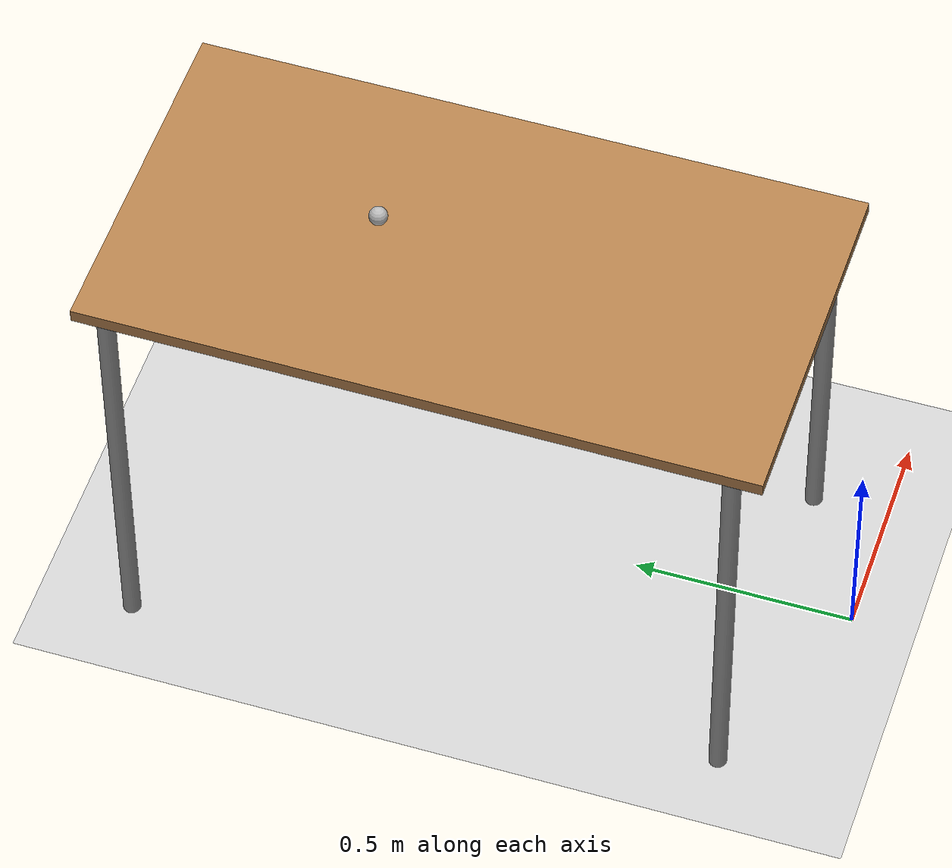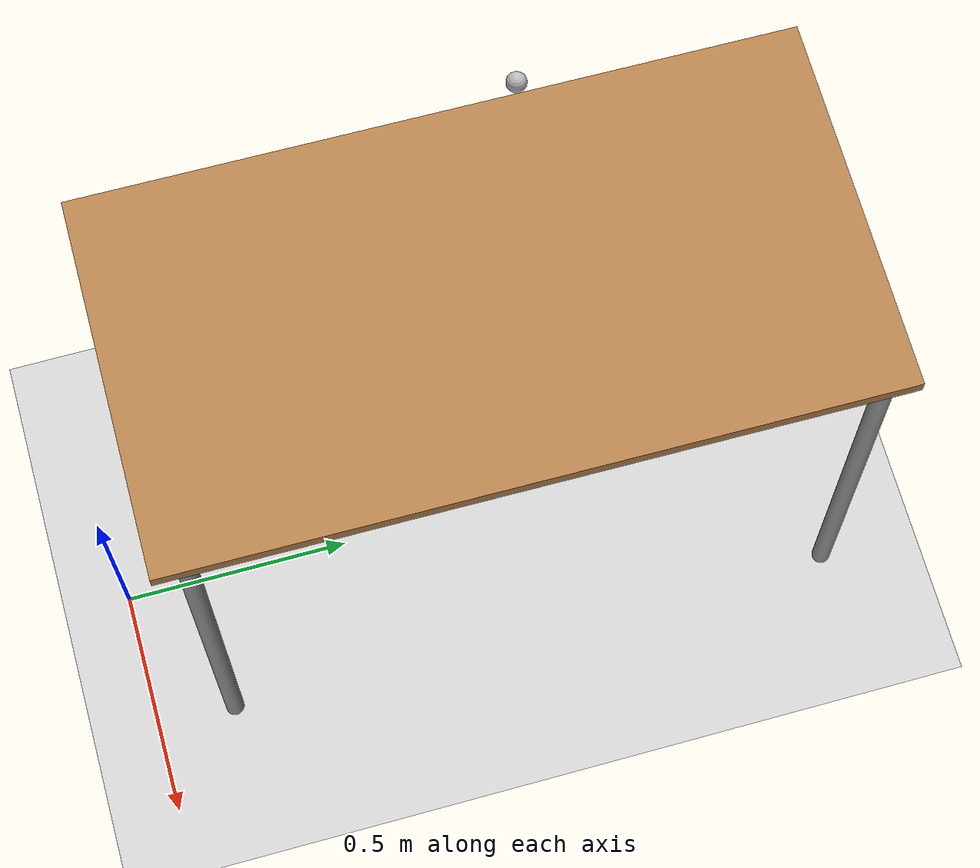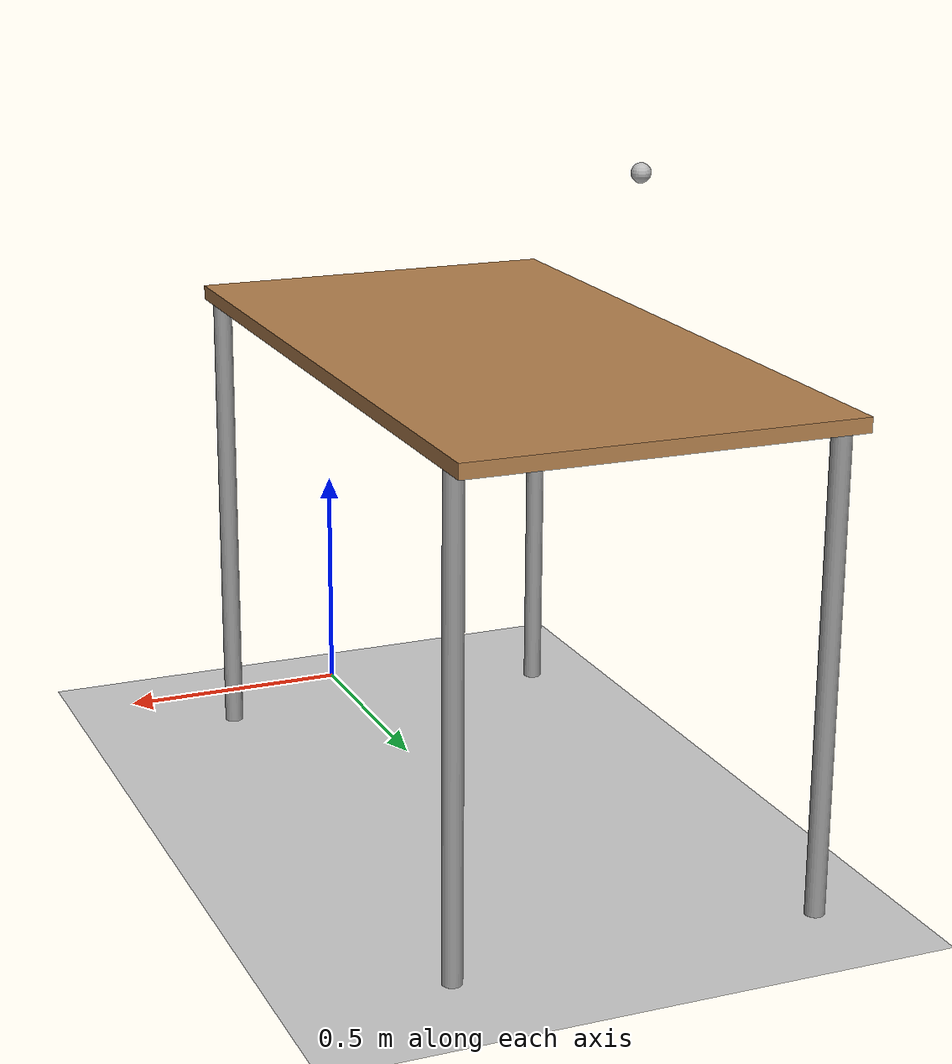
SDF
<sdf version="1.6">
 <world name="scooping">
  <include><uri>model://sun</uri></include>
  <include><uri>model://ground_plane</uri></include>
  <include><uri>model://table</uri><pose>-0.071633 0.854817 0 0 0 -1.57694</pose><static>true</static></include>
  <include>
   <uri>model://gripper</uri>
   <pose>-0.309675 0.976666 1.362517 0 0 0</pose>
   <plugin name="grip" filename="libGripPlugin.so"><link>ladle::link</link></plugin>
   <plugin name="force_controller" filename="libforce_controller_plugin.so">
    <linkName>link</linkName>
    <topicName>set_ee_twist</topicName>
    <P>0.5</P>
    <I>0.0</I>
    <D>0.0</D>
   </plugin>
  </include>
  <plugin name="box_factory" filename="libBoxFactoryPlugin.so">
   <pose>-0.125013 0.976666 1.015001 0 0 0</pose>
   <width>0.15</width>
   <depth>0.15</depth>
   <height>0.06</height>
   <friction>0.8</friction>
   <friction2>0.8</friction2>
   <mass>0.01</mass>
   <thickness>0.005</thickness>
   <static>true</static>
  </plugin>
  <plugin name="grains_factory" filename="libGrainsFactoryPlugin.so">
   <pose>-0.125013 0.976666 1.15 0 0 0</pose>
   <mass>0.001</mass>
   <radius>0.007</radius>
   <quantity>200</quantity>
   <friction>0.4</friction>
   <friction2>0.4</friction2>
   <velocity_decay>0.3</velocity_decay>
  </plugin>
 </world>
</sdf>

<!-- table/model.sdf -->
<sdf version="1.5">
  <model name="table">
    <static>true</static>
    <link name="link">
      <collision name="surface">
        <pose>0 0 1.0 0 0 0</pose>
        <geometry>
          <box>
            <size>1.5 0.8 0.03</size>
          </box>
        </geometry>
        <surface>
          <friction>
            <ode>
              <mu>0.6</mu>
              <mu2>0.6</mu2>
            </ode>
          </friction>
        </surface>
      </collision>
      <visual name="visual1">
        <pose>0 0 1.0 0 0 0</pose>
        <geometry>
          <box>
            <size>1.5 0.8 0.03</size>
          </box>
        </geometry>
        <material>
          <script>
            <uri>model://media/materials/scripts/gazebo.material</uri>
            <name>Gazebo/Wood</name>
          </script>
        </material>
      </visual>
      <collision name="front_left_leg">
        <pose>0.68 0.38 0.5 0 0 0</pose>
        <geometry>
          <cylinder>
            <radius>0.02</radius>
            <length>1.0</length>
          </cylinder>
        </geometry>
      </collision>
      <visual name="front_left_leg">
        <pose>0.68 0.38 0.5 0 0 0</pose>
        <geometry>
          <cylinder>
            <radius>0.02</radius>
            <length>1.0</length>
          </cylinder>
        </geometry>
        <material>
          <script>
            <uri>model://media/materials/scripts/gazebo.material</uri>
            <name>Gazebo/Grey</name>
          </script>
        </material>
      </visual>
      <collision name="front_right_leg">
        <pose>0.68 -0.38 0.5 0 0 0</pose>
        <geometry>
          <cylinder>
            <radius>0.02</radius>
            <length>1.0</length>
          </cylinder>
        </geometry>
      </collision>
      <visual name="front_right_leg">
        <pose>0.68 -0.38 0.5 0 0 0</pose>
        <geometry>
          <cylinder>
            <radius>0.02</radius>
            <length>1.0</length>
          </cylinder>
        </geometry>
        <material>
          <script>
            <uri>model://media/materials/scripts/gazebo.material</uri>
            <name>Gazebo/Grey</name>
          </script>
        </material>
      </visual>
      <collision name="back_right_leg">
        <pose>-0.68 -0.38 0.5 0 0 0</pose>
        <geometry>
          <cylinder>
            <radius>0.02</radius>
            <length>1.0</length>
          </cylinder>
        </geometry>
      </collision>
      <visual name="back_right_leg">
        <pose>-0.68 -0.38 0.5 0 0 0</pose>
        <geometry>
          <cylinder>
            <radius>0.02</radius>
            <length>1.0</length>
          </cylinder>
        </geometry>
        <material>
          <script>
            <uri>model://media/materials/scripts/gazebo.material</uri>
            <name>Gazebo/Grey</name>
          </script>
        </material>
      </visual>
      <collision name="back_left_leg">
        <pose>-0.68 0.38 0.5 0 0 0</pose>
        <geometry>
          <cylinder>
            <radius>0.02</radius>
            <length>1.0</length>
          </cylinder>
        </geometry>
      </collision>
      <visual name="back_left_leg">
        <pose>-0.68 0.38 0.5 0 0 0</pose>
        <geometry>
          <cylinder>
            <radius>0.02</radius>
            <length>1.0</length>
          </cylinder>
        </geometry>
        <material>
          <script>
            <uri>model://media/materials/scripts/gazebo.material</uri>
            <name>Gazebo/Grey</name>
          </script>
        </material>
      </visual>
    </link>
  </model>
</sdf>

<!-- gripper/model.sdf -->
<sdf version='1.6'>
    <model name='gripper'>
        <static>false</static>
        <allow_auto_disable>false</allow_auto_disable>

        <pose>0 0 0 0 0 0</pose>

        <link name='link'>
            <pose>0 0 0 0 0 0</pose>

            <gravity>false</gravity>

            <visual name='visual'>
                <geometry>
                    <sphere>
                        <radius>0.02</radius>
                    </sphere>
                </geometry>
            </visual>

        </link>
    </model>
</sdf>
